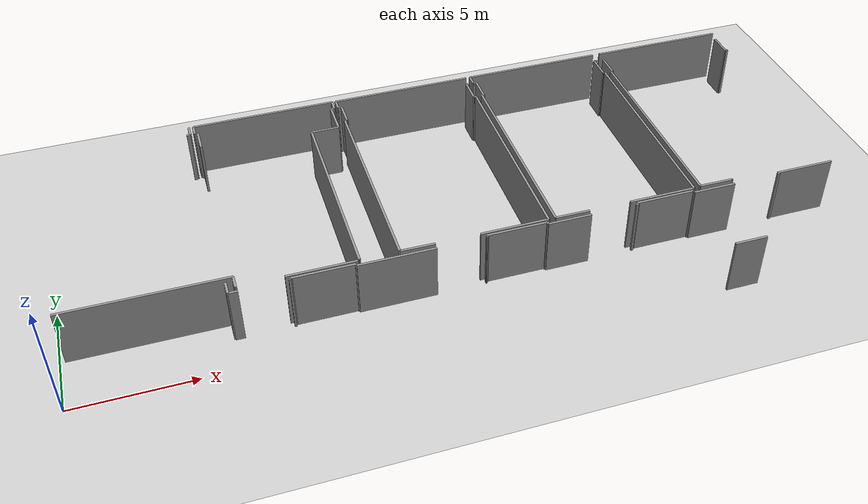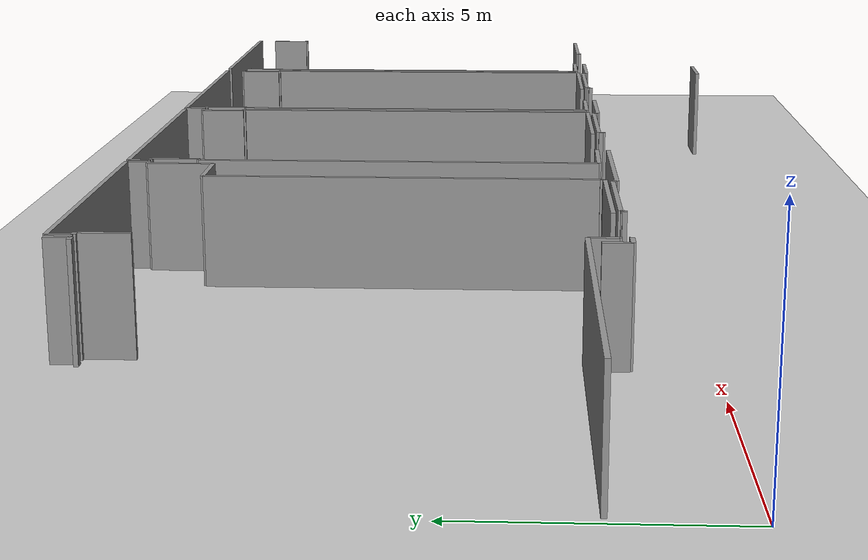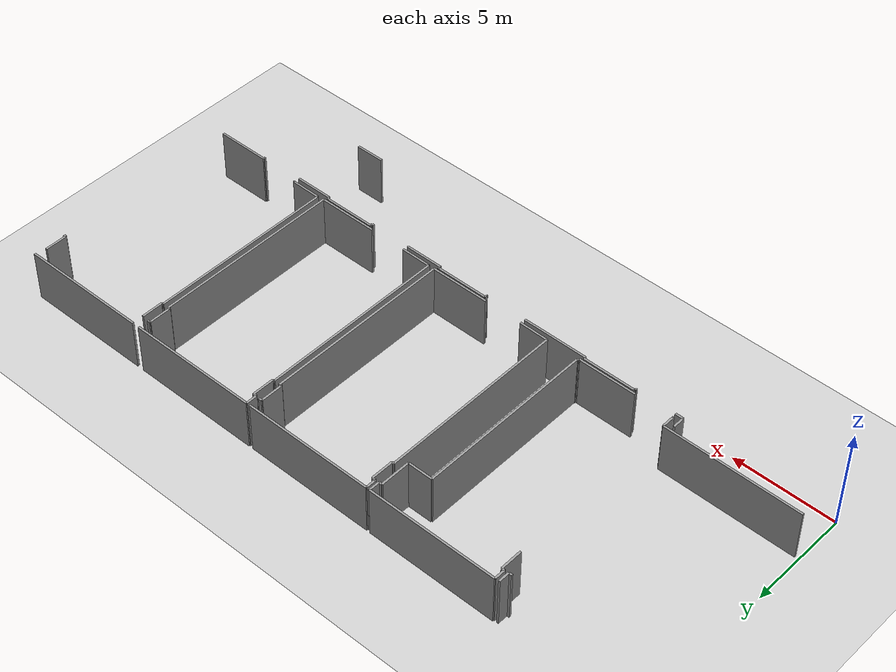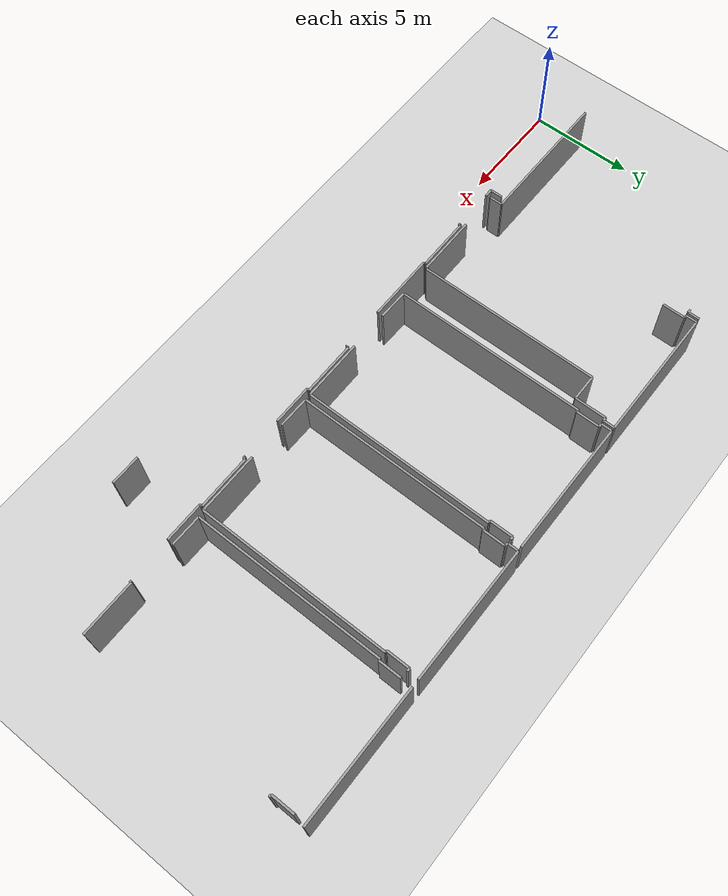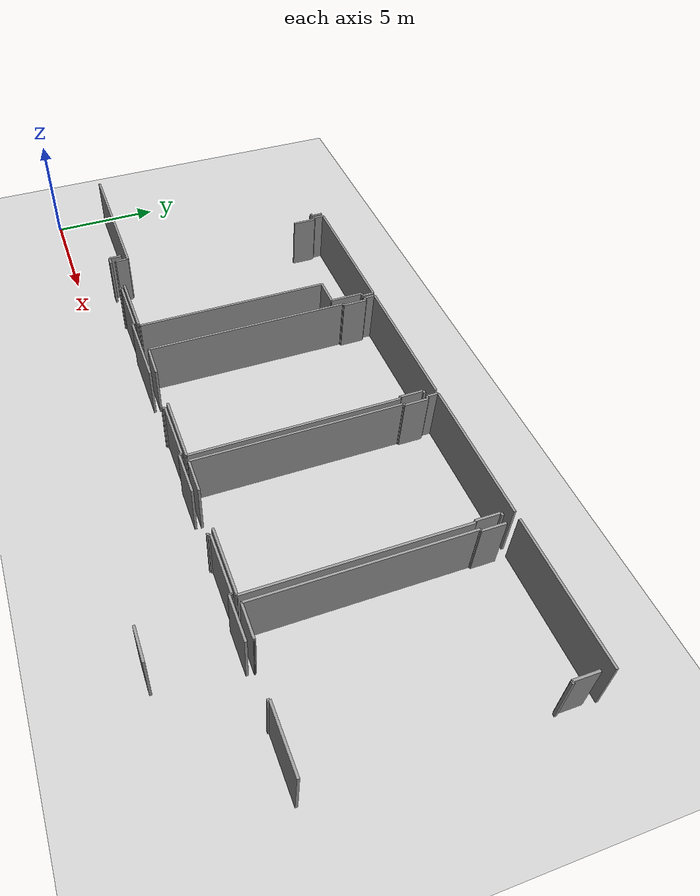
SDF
<sdf version="1.6">
 <world name="default">
  <model name="ground_plane">
   <static>1</static>
   <link name="link">
    <collision name="collision">
     <geometry><plane><normal>0 0 1</normal><size>100 100</size></plane></geometry>
     <surface><friction><ode><mu>100</mu><mu2>50</mu2></ode></friction></surface>
    </collision>
    <visual name="visual">
     <cast_shadows>0</cast_shadows>
     <geometry><plane><normal>0 0 1</normal><size>100 100</size></plane></geometry>
     <material>
      <script><uri>file://media/materials/scripts/gazebo.material</uri><name>Gazebo/Grey</name></script>
     </material>
    </visual>
   </link>
  </model>
  <model name="0510040942_A-40">
   <static>1</static>
   <link name="Wall_359">
    <collision name="Wall_359_Collision">
     <geometry><box><size>9.08649149295 0.1 2.5</size></box></geometry>
     <pose>4.54324574648 0 1.25 0 0 0</pose>
    </collision>
    <visual name="Wall_359_Visual">
     <pose>4.54324574648 0 1.25 0 0 0</pose>
     <geometry><box><size>9.08649149295 0.1 2.5</size></box></geometry>
     <material>
      <script><uri>file://media/materials/scripts/gazebo.material</uri><name>Gazebo/Grey</name></script>
      <ambient>1 1 1 1</ambient>
     </material>
    </visual>
    <pose>84.8795310656 -10.675869419 0 0 0 1.57079632679</pose>
   </link>
   <link name="Wall_360">
    <collision name="Wall_360_Collision">
     <geometry><box><size>0.075491328013 0.1 2.5</size></box></geometry>
     <pose>0.0377456640065 0 1.25 0 0 0</pose>
    </collision>
    <visual name="Wall_360_Visual">
     <pose>0.0377456640065 0 1.25 0 0 0</pose>
     <geometry><box><size>0.075491328013 0.1 2.5</size></box></geometry>
     <material>
      <script><uri>file://media/materials/scripts/gazebo.material</uri><name>Gazebo/Grey</name></script>
      <ambient>1 1 1 1</ambient>
     </material>
    </visual>
    <pose>84.8795310656 -1.58937792608 0 0 0 0.0</pose>
   </link>
   <link name="Wall_361">
    <collision name="Wall_361_Collision">
     <geometry><box><size>1.04545973584 0.1 2.5</size></box></geometry>
     <pose>0.522729867922 0 1.25 0 0 0</pose>
    </collision>
    <visual name="Wall_361_Visual">
     <pose>0.522729867922 0 1.25 0 0 0</pose>
     <geometry><box><size>1.04545973584 0.1 2.5</size></box></geometry>
     <material>
      <script><uri>file://media/materials/scripts/gazebo.material</uri><name>Gazebo/Grey</name></script>
      <ambient>1 1 1 1</ambient>
     </material>
    </visual>
    <pose>84.9550223936 -1.58937792608 0 0 0 1.57079632679</pose>
   </link>
   <link name="Wall_362">
    <collision name="Wall_362_Collision">
     <geometry><box><size>6.1646599084 0.1 2.5</size></box></geometry>
     <pose>3.0823299542 0 1.25 0 0 0</pose>
    </collision>
    <visual name="Wall_362_Visual">
     <pose>3.0823299542 0 1.25 0 0 0</pose>
     <geometry><box><size>6.1646599084 0.1 2.5</size></box></geometry>
     <material>
      <script><uri>file://media/materials/scripts/gazebo.material</uri><name>Gazebo/Grey</name></script>
      <ambient>1 1 1 1</ambient>
     </material>
    </visual>
    <pose>84.9550223936 -0.00634380907672 0 0 0 0.0</pose>
   </link>
   <link name="Wall_365">
    <collision name="Wall_365_Collision">
     <geometry><box><size>1.0835225903 0.1 2.5</size></box></geometry>
     <pose>0.541761295152 0 1.25 0 0 0</pose>
    </collision>
    <visual name="Wall_365_Visual">
     <pose>0.541761295152 0 1.25 0 0 0</pose>
     <geometry><box><size>1.0835225903 0.1 2.5</size></box></geometry>
     <material>
      <script><uri>file://media/materials/scripts/gazebo.material</uri><name>Gazebo/Grey</name></script>
      <ambient>1 1 1 1</ambient>
     </material>
    </visual>
    <pose>90.9813872642 -0.519050458657 0 0 0 -1.57079632679</pose>
   </link>
   <link name="Wall_366">
    <collision name="Wall_366_Collision">
     <geometry><box><size>0.112031668295 0.1 2.5</size></box></geometry>
     <pose>0.0560158341475 0 1.25 0 0 0</pose>
    </collision>
    <visual name="Wall_366_Visual">
     <pose>0.0560158341475 0 1.25 0 0 0</pose>
     <geometry><box><size>0.112031668295 0.1 2.5</size></box></geometry>
     <material>
      <script><uri>file://media/materials/scripts/gazebo.material</uri><name>Gazebo/Grey</name></script>
      <ambient>1 1 1 1</ambient>
     </material>
    </visual>
    <pose>90.9813872642 -1.60257304896 0 0 0 0.0</pose>
   </link>
   <link name="Wall_369">
    <collision name="Wall_369_Collision">
     <geometry><box><size>0.0266439981222 0.1 2.5</size></box></geometry>
     <pose>0.0133219990611 0 1.25 0 0 0</pose>
    </collision>
    <visual name="Wall_369_Visual">
     <pose>0.0133219990611 0 1.25 0 0 0</pose>
     <geometry><box><size>0.0266439981222 0.1 2.5</size></box></geometry>
     <material>
      <script><uri>file://media/materials/scripts/gazebo.material</uri><name>Gazebo/Grey</name></script>
      <ambient>1 1 1 1</ambient>
     </material>
    </visual>
    <pose>86.33771902 -10.7182460637 0 0 0 1.57079632679</pose>
   </link>
   <link name="Wall_370">
    <collision name="Wall_370_Collision">
     <geometry><box><size>1.45827282305 0.1 2.5</size></box></geometry>
     <pose>0.729136411526 0 1.25 0 0 0</pose>
    </collision>
    <visual name="Wall_370_Visual">
     <pose>0.729136411526 0 1.25 0 0 0</pose>
     <geometry><box><size>1.45827282305 0.1 2.5</size></box></geometry>
     <material>
      <script><uri>file://media/materials/scripts/gazebo.material</uri><name>Gazebo/Grey</name></script>
      <ambient>1 1 1 1</ambient>
     </material>
    </visual>
    <pose>86.33771902 -10.6916020655 0 0 0 3.13080389618</pose>
   </link>
   <link name="Wall_371">
    <collision name="Wall_371_Collision">
     <geometry><box><size>9.10767981527 0.1 2.5</size></box></geometry>
     <pose>4.55383990763 0 1.25 0 0 0</pose>
    </collision>
    <visual name="Wall_371_Visual">
     <pose>4.55383990763 0 1.25 0 0 0</pose>
     <geometry><box><size>9.10767981527 0.1 2.5</size></box></geometry>
     <material>
      <script><uri>file://media/materials/scripts/gazebo.material</uri><name>Gazebo/Grey</name></script>
      <ambient>1 1 1 1</ambient>
     </material>
    </visual>
    <pose>78.3886724945 -10.7110141213 0 0 0 1.57079632679</pose>
   </link>
   <link name="Wall_372">
    <collision name="Wall_372_Collision">
     <geometry><box><size>0.0806932514559 0.1 2.5</size></box></geometry>
     <pose>0.0403466257279 0 1.25 0 0 0</pose>
    </collision>
    <visual name="Wall_372_Visual">
     <pose>0.0403466257279 0 1.25 0 0 0</pose>
     <geometry><box><size>0.0806932514559 0.1 2.5</size></box></geometry>
     <material>
      <script><uri>file://media/materials/scripts/gazebo.material</uri><name>Gazebo/Grey</name></script>
      <ambient>1 1 1 1</ambient>
     </material>
    </visual>
    <pose>78.3886724945 -1.60333430605 0 0 0 0.0</pose>
   </link>
   <link name="Wall_373">
    <collision name="Wall_373_Collision">
     <geometry><box><size>1.0712156007 0.1 2.5</size></box></geometry>
     <pose>0.535607800348 0 1.25 0 0 0</pose>
    </collision>
    <visual name="Wall_373_Visual">
     <pose>0.535607800348 0 1.25 0 0 0</pose>
     <geometry><box><size>1.0712156007 0.1 2.5</size></box></geometry>
     <material>
      <script><uri>file://media/materials/scripts/gazebo.material</uri><name>Gazebo/Grey</name></script>
      <ambient>1 1 1 1</ambient>
     </material>
    </visual>
    <pose>78.469365746 -1.60333430605 0 0 0 1.57079632679</pose>
   </link>
   <link name="Wall_374">
    <collision name="Wall_374_Collision">
     <geometry><box><size>0.147937627669 0.1 2.5</size></box></geometry>
     <pose>0.0739688138346 0 1.25 0 0 0</pose>
    </collision>
    <visual name="Wall_374_Visual">
     <pose>0.0739688138346 0 1.25 0 0 0</pose>
     <geometry><box><size>0.147937627669 0.1 2.5</size></box></geometry>
     <material>
      <script><uri>file://media/materials/scripts/gazebo.material</uri><name>Gazebo/Grey</name></script>
      <ambient>1 1 1 1</ambient>
     </material>
    </visual>
    <pose>78.469365746 -0.532118705355 0 0 0 3.14159265359</pose>
   </link>
   <link name="Wall_375">
    <collision name="Wall_375_Collision">
     <geometry><box><size>0.526536153368 0.1 2.5</size></box></geometry>
     <pose>0.263268076684 0 1.25 0 0 0</pose>
    </collision>
    <visual name="Wall_375_Visual">
     <pose>0.263268076684 0 1.25 0 0 0</pose>
     <geometry><box><size>0.526536153368 0.1 2.5</size></box></geometry>
     <material>
      <script><uri>file://media/materials/scripts/gazebo.material</uri><name>Gazebo/Grey</name></script>
      <ambient>1 1 1 1</ambient>
     </material>
    </visual>
    <pose>78.3214281183 -0.532118705355 0 0 0 1.57079632679</pose>
   </link>
   <link name="Wall_376">
    <collision name="Wall_376_Collision">
     <geometry><box><size>6.29851427991 0.1 2.5</size></box></geometry>
     <pose>3.14925713996 0 1.25 0 0 0</pose>
    </collision>
    <visual name="Wall_376_Visual">
     <pose>3.14925713996 0 1.25 0 0 0</pose>
     <geometry><box><size>6.29851427991 0.1 2.5</size></box></geometry>
     <material>
      <script><uri>file://media/materials/scripts/gazebo.material</uri><name>Gazebo/Grey</name></script>
      <ambient>1 1 1 1</ambient>
     </material>
    </visual>
    <pose>78.3214281183 -0.00558255198752 0 0 0 0.0</pose>
   </link>
   <link name="Wall_377">
    <collision name="Wall_377_Collision">
     <geometry><box><size>0.132839362067 0.1 2.5</size></box></geometry>
     <pose>0.0664196810333 0 1.25 0 0 0</pose>
    </collision>
    <visual name="Wall_377_Visual">
     <pose>0.0664196810333 0 1.25 0 0 0</pose>
     <geometry><box><size>0.132839362067 0.1 2.5</size></box></geometry>
     <material>
      <script><uri>file://media/materials/scripts/gazebo.material</uri><name>Gazebo/Grey</name></script>
      <ambient>1 1 1 1</ambient>
     </material>
    </visual>
    <pose>84.6199423982 -0.511311011584 0 0 0 3.14159265359</pose>
   </link>
   <link name="Wall_378">
    <collision name="Wall_378_Collision">
     <geometry><box><size>1.08136569522 0.1 2.5</size></box></geometry>
     <pose>0.540682847609 0 1.25 0 0 0</pose>
    </collision>
    <visual name="Wall_378_Visual">
     <pose>0.540682847609 0 1.25 0 0 0</pose>
     <geometry><box><size>1.08136569522 0.1 2.5</size></box></geometry>
     <material>
      <script><uri>file://media/materials/scripts/gazebo.material</uri><name>Gazebo/Grey</name></script>
      <ambient>1 1 1 1</ambient>
     </material>
    </visual>
    <pose>84.4871030361 -0.511311011584 0 0 0 -1.57079632679</pose>
   </link>
   <link name="Wall_379">
    <collision name="Wall_379_Collision">
     <geometry><box><size>0.0782826040067 0.1 2.5</size></box></geometry>
     <pose>0.0391413020034 0 1.25 0 0 0</pose>
    </collision>
    <visual name="Wall_379_Visual">
     <pose>0.0391413020034 0 1.25 0 0 0</pose>
     <geometry><box><size>0.0782826040067 0.1 2.5</size></box></geometry>
     <material>
      <script><uri>file://media/materials/scripts/gazebo.material</uri><name>Gazebo/Grey</name></script>
      <ambient>1 1 1 1</ambient>
     </material>
    </visual>
    <pose>84.4871030361 -1.5926767068 0 0 0 0.0</pose>
   </link>
   <link name="Wall_380">
    <collision name="Wall_380_Collision">
     <geometry><box><size>9.13394318485 0.1 2.5</size></box></geometry>
     <pose>4.56697159242 0 1.25 0 0 0</pose>
    </collision>
    <visual name="Wall_380_Visual">
     <pose>4.56697159242 0 1.25 0 0 0</pose>
     <geometry><box><size>9.13394318485 0.1 2.5</size></box></geometry>
     <material>
      <script><uri>file://media/materials/scripts/gazebo.material</uri><name>Gazebo/Grey</name></script>
      <ambient>1 1 1 1</ambient>
     </material>
    </visual>
    <pose>84.5653856402 -1.5926767068 0 0 0 -1.57079632679</pose>
   </link>
   <link name="Wall_381">
    <collision name="Wall_381_Collision">
     <geometry><box><size>2.89556821498 0.1 2.5</size></box></geometry>
     <pose>1.44778410749 0 1.25 0 0 0</pose>
    </collision>
    <visual name="Wall_381_Visual">
     <pose>1.44778410749 0 1.25 0 0 0</pose>
     <geometry><box><size>2.89556821498 0.1 2.5</size></box></geometry>
     <material>
      <script><uri>file://media/materials/scripts/gazebo.material</uri><name>Gazebo/Grey</name></script>
      <ambient>1 1 1 1</ambient>
     </material>
    </visual>
    <pose>84.5653856402 -10.7266198916 0 0 0 3.14159265359</pose>
   </link>
   <link name="Wall_382">
    <collision name="Wall_382_Collision">
     <geometry><box><size>1.48212283799 0.1 2.5</size></box></geometry>
     <pose>0.741061418993 0 1.25 0 0 0</pose>
    </collision>
    <visual name="Wall_382_Visual">
     <pose>0.741061418993 0 1.25 0 0 0</pose>
     <geometry><box><size>1.48212283799 0.1 2.5</size></box></geometry>
     <material>
      <script><uri>file://media/materials/scripts/gazebo.material</uri><name>Gazebo/Grey</name></script>
      <ambient>1 1 1 1</ambient>
     </material>
    </visual>
    <pose>79.870713171 -10.7266198916 0 0 0 3.13106312236</pose>
   </link>
   <link name="Wall_383">
    <collision name="Wall_383_Collision">
     <geometry><box><size>9.08471522641 0.1 2.5</size></box></geometry>
     <pose>4.54235761321 0 1.25 0 0 0</pose>
    </collision>
    <visual name="Wall_383_Visual">
     <pose>4.54235761321 0 1.25 0 0 0</pose>
     <geometry><box><size>9.08471522641 0.1 2.5</size></box></geometry>
     <material>
      <script><uri>file://media/materials/scripts/gazebo.material</uri><name>Gazebo/Grey</name></script>
      <ambient>1 1 1 1</ambient>
     </material>
    </visual>
    <pose>71.8882982098 -10.6899526752 0 0 0 1.57079632679</pose>
   </link>
   <link name="Wall_384">
    <collision name="Wall_384_Collision">
     <geometry><box><size>0.100105307231 0.1 2.5</size></box></geometry>
     <pose>0.0500526536153 0 1.25 0 0 0</pose>
    </collision>
    <visual name="Wall_384_Visual">
     <pose>0.0500526536153 0 1.25 0 0 0</pose>
     <geometry><box><size>0.100105307231 0.1 2.5</size></box></geometry>
     <material>
      <script><uri>file://media/materials/scripts/gazebo.material</uri><name>Gazebo/Grey</name></script>
      <ambient>1 1 1 1</ambient>
     </material>
    </visual>
    <pose>71.8882982098 -1.60523744877 0 0 0 0.0</pose>
   </link>
   <link name="Wall_385">
    <collision name="Wall_385_Collision">
     <geometry><box><size>1.09291142774 0.1 2.5</size></box></geometry>
     <pose>0.546455713869 0 1.25 0 0 0</pose>
    </collision>
    <visual name="Wall_385_Visual">
     <pose>0.546455713869 0 1.25 0 0 0</pose>
     <geometry><box><size>1.09291142774 0.1 2.5</size></box></geometry>
     <material>
      <script><uri>file://media/materials/scripts/gazebo.material</uri><name>Gazebo/Grey</name></script>
      <ambient>1 1 1 1</ambient>
     </material>
    </visual>
    <pose>71.988403517 -1.60523744877 0 0 0 1.57079632679</pose>
   </link>
   <link name="Wall_386">
    <collision name="Wall_386_Collision">
     <geometry><box><size>0.158595226918 0.1 2.5</size></box></geometry>
     <pose>0.079297613459 0 1.25 0 0 0</pose>
    </collision>
    <visual name="Wall_386_Visual">
     <pose>0.079297613459 0 1.25 0 0 0</pose>
     <geometry><box><size>0.158595226918 0.1 2.5</size></box></geometry>
     <material>
      <script><uri>file://media/materials/scripts/gazebo.material</uri><name>Gazebo/Grey</name></script>
      <ambient>1 1 1 1</ambient>
     </material>
    </visual>
    <pose>71.988403517 -0.512326021036 0 0 0 3.14159265359</pose>
   </link>
   <link name="Wall_387">
    <collision name="Wall_387_Collision">
     <geometry><box><size>0.500526536153 0.1 2.5</size></box></geometry>
     <pose>0.250263268077 0 1.25 0 0 0</pose>
    </collision>
    <visual name="Wall_387_Visual">
     <pose>0.250263268077 0 1.25 0 0 0</pose>
     <geometry><box><size>0.500526536153 0.1 2.5</size></box></geometry>
     <material>
      <script><uri>file://media/materials/scripts/gazebo.material</uri><name>Gazebo/Grey</name></script>
      <ambient>1 1 1 1</ambient>
     </material>
    </visual>
    <pose>71.8298082901 -0.512326021036 0 0 0 1.57079632679</pose>
   </link>
   <link name="Wall_388">
    <collision name="Wall_388_Collision">
     <geometry><box><size>6.29940241318 0.1 2.5</size></box></geometry>
     <pose>3.14970120659 0 1.25 0 0 0</pose>
    </collision>
    <visual name="Wall_388_Visual">
     <pose>3.14970120659 0 1.25 0 0 0</pose>
     <geometry><box><size>6.29940241318 0.1 2.5</size></box></geometry>
     <material>
      <script><uri>file://media/materials/scripts/gazebo.material</uri><name>Gazebo/Grey</name></script>
      <ambient>1 1 1 1</ambient>
     </material>
    </visual>
    <pose>71.8298082901 -0.0117994848827 0 0 0 0.0</pose>
   </link>
   <link name="Wall_389">
    <collision name="Wall_389_Collision">
     <geometry><box><size>0.138802542599 0.1 2.5</size></box></geometry>
     <pose>0.0694012712993 0 1.25 0 0 0</pose>
    </collision>
    <visual name="Wall_389_Visual">
     <pose>0.0694012712993 0 1.25 0 0 0</pose>
     <geometry><box><size>0.138802542599 0.1 2.5</size></box></geometry>
     <material>
      <script><uri>file://media/materials/scripts/gazebo.material</uri><name>Gazebo/Grey</name></script>
      <ambient>1 1 1 1</ambient>
     </material>
    </visual>
    <pose>78.1292107033 -0.517274192116 0 0 0 3.14159265359</pose>
   </link>
   <link name="Wall_390">
    <collision name="Wall_390_Collision">
     <geometry><box><size>1.08504510448 0.1 2.5</size></box></geometry>
     <pose>0.542522552241 0 1.25 0 0 0</pose>
    </collision>
    <visual name="Wall_390_Visual">
     <pose>0.542522552241 0 1.25 0 0 0</pose>
     <geometry><box><size>1.08504510448 0.1 2.5</size></box></geometry>
     <material>
      <script><uri>file://media/materials/scripts/gazebo.material</uri><name>Gazebo/Grey</name></script>
      <ambient>1 1 1 1</ambient>
     </material>
    </visual>
    <pose>77.9904081607 -0.517274192116 0 0 0 -1.57079632679</pose>
   </link>
   <link name="Wall_391">
    <collision name="Wall_391_Collision">
     <geometry><box><size>0.10086656432 0.1 2.5</size></box></geometry>
     <pose>0.0504332821599 0 1.25 0 0 0</pose>
    </collision>
    <visual name="Wall_391_Visual">
     <pose>0.0504332821599 0 1.25 0 0 0</pose>
     <geometry><box><size>0.10086656432 0.1 2.5</size></box></geometry>
     <material>
      <script><uri>file://media/materials/scripts/gazebo.material</uri><name>Gazebo/Grey</name></script>
      <ambient>1 1 1 1</ambient>
     </material>
    </visual>
    <pose>77.9904081607 -1.6023192966 0 0 0 0.0</pose>
   </link>
   <link name="Wall_392">
    <collision name="Wall_392_Collision">
     <geometry><box><size>9.1150386338 0.1 2.5</size></box></geometry>
     <pose>4.5575193169 0 1.25 0 0 0</pose>
    </collision>
    <visual name="Wall_392_Visual">
     <pose>4.5575193169 0 1.25 0 0 0</pose>
     <geometry><box><size>9.1150386338 0.1 2.5</size></box></geometry>
     <material>
      <script><uri>file://media/materials/scripts/gazebo.material</uri><name>Gazebo/Grey</name></script>
      <ambient>1 1 1 1</ambient>
     </material>
    </visual>
    <pose>78.091274725 -1.6023192966 0 0 0 -1.57079632679</pose>
   </link>
   <link name="Wall_393">
    <collision name="Wall_393_Collision">
     <geometry><box><size>2.88897065354 0.1 2.5</size></box></geometry>
     <pose>1.44448532677 0 1.25 0 0 0</pose>
    </collision>
    <visual name="Wall_393_Visual">
     <pose>1.44448532677 0 1.25 0 0 0</pose>
     <geometry><box><size>2.88897065354 0.1 2.5</size></box></geometry>
     <material>
      <script><uri>file://media/materials/scripts/gazebo.material</uri><name>Gazebo/Grey</name></script>
      <ambient>1 1 1 1</ambient>
     </material>
    </visual>
    <pose>78.091274725 -10.7173579304 0 0 0 3.14159265359</pose>
   </link>
   <link name="Wall_394">
    <collision name="Wall_394_Collision">
     <geometry><box><size>1.43878317103 0.1 2.5</size></box></geometry>
     <pose>0.719391585513 0 1.25 0 0 0</pose>
    </collision>
    <visual name="Wall_394_Visual">
     <pose>0.719391585513 0 1.25 0 0 0</pose>
     <geometry><box><size>1.43878317103 0.1 2.5</size></box></geometry>
     <material>
      <script><uri>file://media/materials/scripts/gazebo.material</uri><name>Gazebo/Grey</name></script>
      <ambient>1 1 1 1</ambient>
     </material>
    </visual>
    <pose>73.326820356 -10.7173579304 0 0 0 3.12254397887</pose>
   </link>
   <link name="Wall_401">
    <collision name="Wall_401_Collision">
     <geometry><box><size>0.534275600442 0.1 2.5</size></box></geometry>
     <pose>0.267137800221 0 1.25 0 0 0</pose>
    </collision>
    <visual name="Wall_401_Visual">
     <pose>0.267137800221 0 1.25 0 0 0</pose>
     <geometry><box><size>0.534275600442 0.1 2.5</size></box></geometry>
     <material>
      <script><uri>file://media/materials/scripts/gazebo.material</uri><name>Gazebo/Grey</name></script>
      <ambient>1 1 1 1</ambient>
     </material>
    </visual>
    <pose>65.1497773323 -0.00634380907672 0 0 0 -1.57079632679</pose>
   </link>
   <link name="Wall_402">
    <collision name="Wall_402_Collision">
     <geometry><box><size>0.159483360189 0.1 2.5</size></box></geometry>
     <pose>0.0797416800944 0 1.25 0 0 0</pose>
    </collision>
    <visual name="Wall_402_Visual">
     <pose>0.0797416800944 0 1.25 0 0 0</pose>
     <geometry><box><size>0.159483360189 0.1 2.5</size></box></geometry>
     <material>
      <script><uri>file://media/materials/scripts/gazebo.material</uri><name>Gazebo/Grey</name></script>
      <ambient>1 1 1 1</ambient>
     </material>
    </visual>
    <pose>65.1497773323 -0.540619409518 0 0 0 3.14159265359</pose>
   </link>
   <link name="Wall_405">
    <collision name="Wall_405_Collision">
     <geometry><box><size>1.07362624814 0.1 2.5</size></box></geometry>
     <pose>0.536813124072 0 1.25 0 0 0</pose>
    </collision>
    <visual name="Wall_405_Visual">
     <pose>0.536813124072 0 1.25 0 0 0</pose>
     <geometry><box><size>1.07362624814 0.1 2.5</size></box></geometry>
     <material>
      <script><uri>file://media/materials/scripts/gazebo.material</uri><name>Gazebo/Grey</name></script>
      <ambient>1 1 1 1</ambient>
     </material>
    </visual>
    <pose>65.4762297474 -1.59978177297 0 0 0 1.57079632679</pose>
   </link>
   <link name="Wall_406">
    <collision name="Wall_406_Collision">
     <geometry><box><size>0.130555590799 0.1 2.5</size></box></geometry>
     <pose>0.0652777953995 0 1.25 0 0 0</pose>
    </collision>
    <visual name="Wall_406_Visual">
     <pose>0.0652777953995 0 1.25 0 0 0</pose>
     <geometry><box><size>0.130555590799 0.1 2.5</size></box></geometry>
     <material>
      <script><uri>file://media/materials/scripts/gazebo.material</uri><name>Gazebo/Grey</name></script>
      <ambient>1 1 1 1</ambient>
     </material>
    </visual>
    <pose>65.4762297474 -0.526155524823 0 0 0 3.14159265359</pose>
   </link>
   <link name="Wall_407">
    <collision name="Wall_407_Collision">
     <geometry><box><size>0.522349239377 0.1 2.5</size></box></geometry>
     <pose>0.261174619689 0 1.25 0 0 0</pose>
    </collision>
    <visual name="Wall_407_Visual">
     <pose>0.261174619689 0 1.25 0 0 0</pose>
     <geometry><box><size>0.522349239377 0.1 2.5</size></box></geometry>
     <material>
      <script><uri>file://media/materials/scripts/gazebo.material</uri><name>Gazebo/Grey</name></script>
      <ambient>1 1 1 1</ambient>
     </material>
    </visual>
    <pose>65.3456741566 -0.526155524823 0 0 0 1.57079632679</pose>
   </link>
   <link name="Wall_408">
    <collision name="Wall_408_Collision">
     <geometry><box><size>6.30815686971 0.1 2.5</size></box></geometry>
     <pose>3.15407843486 0 1.25 0 0 0</pose>
    </collision>
    <visual name="Wall_408_Visual">
     <pose>3.15407843486 0 1.25 0 0 0</pose>
     <geometry><box><size>6.30815686971 0.1 2.5</size></box></geometry>
     <material>
      <script><uri>file://media/materials/scripts/gazebo.material</uri><name>Gazebo/Grey</name></script>
      <ambient>1 1 1 1</ambient>
     </material>
    </visual>
    <pose>65.3456741566 -0.00380628544603 0 0 0 0.0</pose>
   </link>
   <link name="Wall_409">
    <collision name="Wall_409_Collision">
     <geometry><box><size>0.523618001193 0.1 2.5</size></box></geometry>
     <pose>0.261809000596 0 1.25 0 0 0</pose>
    </collision>
    <visual name="Wall_409_Visual">
     <pose>0.261809000596 0 1.25 0 0 0</pose>
     <geometry><box><size>0.523618001193 0.1 2.5</size></box></geometry>
     <material>
      <script><uri>file://media/materials/scripts/gazebo.material</uri><name>Gazebo/Grey</name></script>
      <ambient>1 1 1 1</ambient>
     </material>
    </visual>
    <pose>71.6538310263 -0.00380628544603 0 0 0 -1.57079632679</pose>
   </link>
   <link name="Wall_410">
    <collision name="Wall_410_Collision">
     <geometry><box><size>0.153520179657 0.1 2.5</size></box></geometry>
     <pose>0.0767600898283 0 1.25 0 0 0</pose>
    </collision>
    <visual name="Wall_410_Visual">
     <pose>0.0767600898283 0 1.25 0 0 0</pose>
     <geometry><box><size>0.153520179657 0.1 2.5</size></box></geometry>
     <material>
      <script><uri>file://media/materials/scripts/gazebo.material</uri><name>Gazebo/Grey</name></script>
      <ambient>1 1 1 1</ambient>
     </material>
    </visual>
    <pose>71.6538310263 -0.527424286639 0 0 0 3.14159265359</pose>
   </link>
   <link name="Wall_411">
    <collision name="Wall_411_Collision">
     <geometry><box><size>1.48102566705 0.1 2.5</size></box></geometry>
     <pose>0.740512833526 0 1.25 0 0 0</pose>
    </collision>
    <visual name="Wall_411_Visual">
     <pose>0.740512833526 0 1.25 0 0 0</pose>
     <geometry><box><size>1.48102566705 0.1 2.5</size></box></geometry>
     <material>
      <script><uri>file://media/materials/scripts/gazebo.material</uri><name>Gazebo/Grey</name></script>
      <ambient>1 1 1 1</ambient>
     </material>
    </visual>
    <pose>71.5003108466 -0.527424286639 0 0 0 -1.57079632679</pose>
   </link>
   <link name="Wall_412">
    <collision name="Wall_412_Collision">
     <geometry><box><size>1.21775759037 0.1 2.5</size></box></geometry>
     <pose>0.608878795184 0 1.25 0 0 0</pose>
    </collision>
    <visual name="Wall_412_Visual">
     <pose>0.608878795184 0 1.25 0 0 0</pose>
     <geometry><box><size>1.21775759037 0.1 2.5</size></box></geometry>
     <material>
      <script><uri>file://media/materials/scripts/gazebo.material</uri><name>Gazebo/Grey</name></script>
      <ambient>1 1 1 1</ambient>
     </material>
    </visual>
    <pose>71.5003108466 -2.00844995369 0 0 0 3.14159265359</pose>
   </link>
   <link name="Wall_413">
    <collision name="Wall_413_Collision">
     <geometry><box><size>8.66538944644 0.1 2.5</size></box></geometry>
     <pose>4.33269472322 0 1.25 0 0 0</pose>
    </collision>
    <visual name="Wall_413_Visual">
     <pose>4.33269472322 0 1.25 0 0 0</pose>
     <geometry><box><size>8.66538944644 0.1 2.5</size></box></geometry>
     <material>
      <script><uri>file://media/materials/scripts/gazebo.material</uri><name>Gazebo/Grey</name></script>
      <ambient>1 1 1 1</ambient>
     </material>
    </visual>
    <pose>70.2825532563 -2.00844995369 0 0 0 -1.57079632679</pose>
   </link>
   <link name="Wall_414">
    <collision name="Wall_414_Collision">
     <geometry><box><size>0.0686400142101 0.1 2.5</size></box></geometry>
     <pose>0.0343200071051 0 1.25 0 0 0</pose>
    </collision>
    <visual name="Wall_414_Visual">
     <pose>0.0343200071051 0 1.25 0 0 0</pose>
     <geometry><box><size>0.0686400142101 0.1 2.5</size></box></geometry>
     <material>
      <script><uri>file://media/materials/scripts/gazebo.material</uri><name>Gazebo/Grey</name></script>
      <ambient>1 1 1 1</ambient>
     </material>
    </visual>
    <pose>70.2825532563 -10.6738394001 0 0 0 3.14159265359</pose>
   </link>
   <link name="Wall_415">
    <collision name="Wall_415_Collision">
     <geometry><box><size>0.0573480340536 0.1 2.5</size></box></geometry>
     <pose>0.0286740170268 0 1.25 0 0 0</pose>
    </collision>
    <visual name="Wall_415_Visual">
     <pose>0.0286740170268 0 1.25 0 0 0</pose>
     <geometry><box><size>0.0573480340536 0.1 2.5</size></box></geometry>
     <material>
      <script><uri>file://media/materials/scripts/gazebo.material</uri><name>Gazebo/Grey</name></script>
      <ambient>1 1 1 1</ambient>
     </material>
    </visual>
    <pose>70.2139132421 -10.6738394001 0 0 0 -1.57079632679</pose>
   </link>
   <link name="Wall_416">
    <collision name="Wall_416_Collision">
     <geometry><box><size>2.85433345598 0.1 2.5</size></box></geometry>
     <pose>1.42716672799 0 1.25 0 0 0</pose>
    </collision>
    <visual name="Wall_416_Visual">
     <pose>1.42716672799 0 1.25 0 0 0</pose>
     <geometry><box><size>2.85433345598 0.1 2.5</size></box></geometry>
     <material>
      <script><uri>file://media/materials/scripts/gazebo.material</uri><name>Gazebo/Grey</name></script>
      <ambient>1 1 1 1</ambient>
     </material>
    </visual>
    <pose>70.2139132421 -10.7311874342 0 0 0 3.14159265359</pose>
   </link>
   <link name="Wall_417">
    <collision name="Wall_417_Collision">
     <geometry><box><size>0.0493548346169 0.1 2.5</size></box></geometry>
     <pose>0.0246774173084 0 1.25 0 0 0</pose>
    </collision>
    <visual name="Wall_417_Visual">
     <pose>0.0246774173084 0 1.25 0 0 0</pose>
     <geometry><box><size>0.0493548346169 0.1 2.5</size></box></geometry>
     <material>
      <script><uri>file://media/materials/scripts/gazebo.material</uri><name>Gazebo/Grey</name></script>
      <ambient>1 1 1 1</ambient>
     </material>
    </visual>
    <pose>65.5433472474 -10.7311874342 0 0 0 3.14159265359</pose>
   </link>
   <link name="Wall_418">
    <collision name="Wall_418_Collision">
     <geometry><box><size>0.5936536534 0.1 2.5</size></box></geometry>
     <pose>0.2968268267 0 1.25 0 0 0</pose>
    </collision>
    <visual name="Wall_418_Visual">
     <pose>0.2968268267 0 1.25 0 0 0</pose>
     <geometry><box><size>0.5936536534 0.1 2.5</size></box></geometry>
     <material>
      <script><uri>file://media/materials/scripts/gazebo.material</uri><name>Gazebo/Grey</name></script>
      <ambient>1 1 1 1</ambient>
     </material>
    </visual>
    <pose>65.4939924128 -10.7311874342 0 0 0 1.57079632679</pose>
   </link>
   <link name="Wall_419">
    <collision name="Wall_419_Collision">
     <geometry><box><size>6.65353125556 0.1 2.5</size></box></geometry>
     <pose>3.32676562778 0 1.25 0 0 0</pose>
    </collision>
    <visual name="Wall_419_Visual">
     <pose>3.32676562778 0 1.25 0 0 0</pose>
     <geometry><box><size>6.65353125556 0.1 2.5</size></box></geometry>
     <material>
      <script><uri>file://media/materials/scripts/gazebo.material</uri><name>Gazebo/Grey</name></script>
      <ambient>1 1 1 1</ambient>
     </material>
    </visual>
    <pose>65.4939924128 -10.1375337808 0 0 0 3.1393043717</pose>
   </link>
   <link name="Wall_421">
    <collision name="Wall_421_Collision">
     <geometry><box><size>0.584899196874 0.1 2.5</size></box></geometry>
     <pose>0.292449598437 0 1.25 0 0 0</pose>
    </collision>
    <visual name="Wall_421_Visual">
     <pose>0.292449598437 0 1.25 0 0 0</pose>
     <geometry><box><size>0.584899196874 0.1 2.5</size></box></geometry>
     <material>
      <script><uri>file://media/materials/scripts/gazebo.material</uri><name>Gazebo/Grey</name></script>
      <ambient>1 1 1 1</ambient>
     </material>
    </visual>
    <pose>65.1627187028 -10.382277935 0 0 0 -1.57079632679</pose>
   </link>
   <link name="Wall_422">
    <collision name="Wall_422_Collision">
     <geometry><box><size>0.381516677874 0.1 2.5</size></box></geometry>
     <pose>0.190758338937 0 1.25 0 0 0</pose>
    </collision>
    <visual name="Wall_422_Visual">
     <pose>0.190758338937 0 1.25 0 0 0</pose>
     <geometry><box><size>0.381516677874 0.1 2.5</size></box></geometry>
     <material>
      <script><uri>file://media/materials/scripts/gazebo.material</uri><name>Gazebo/Grey</name></script>
      <ambient>1 1 1 1</ambient>
     </material>
    </visual>
    <pose>65.1627187028 -10.9671771318 0 0 0 0.0</pose>
   </link>
   <link name="Wall_423">
    <collision name="Wall_423_Collision">
     <geometry><box><size>0.0796782420036 0.1 2.5</size></box></geometry>
     <pose>0.0398391210018 0 1.25 0 0 0</pose>
    </collision>
    <visual name="Wall_423_Visual">
     <pose>0.0398391210018 0 1.25 0 0 0</pose>
     <geometry><box><size>0.0796782420036 0.1 2.5</size></box></geometry>
     <material>
      <script><uri>file://media/materials/scripts/gazebo.material</uri><name>Gazebo/Grey</name></script>
      <ambient>1 1 1 1</ambient>
     </material>
    </visual>
    <pose>67.4712308258 -10.9671771318 0 0 0 0.0</pose>
   </link>
   <link name="Wall_424">
    <collision name="Wall_424_Collision">
     <geometry><box><size>0.0787901087329 0.1 2.5</size></box></geometry>
     <pose>0.0393950543664 0 1.25 0 0 0</pose>
    </collision>
    <visual name="Wall_424_Visual">
     <pose>0.0393950543664 0 1.25 0 0 0</pose>
     <geometry><box><size>0.0787901087329 0.1 2.5</size></box></geometry>
     <material>
      <script><uri>file://media/materials/scripts/gazebo.material</uri><name>Gazebo/Grey</name></script>
      <ambient>1 1 1 1</ambient>
     </material>
    </visual>
    <pose>67.5509090678 -10.9671771318 0 0 0 1.57079632679</pose>
   </link>
   <link name="Wall_425">
    <collision name="Wall_425_Collision">
     <geometry><box><size>2.55033812502 0.1 2.5</size></box></geometry>
     <pose>1.27516906251 0 1.25 0 0 0</pose>
    </collision>
    <visual name="Wall_425_Visual">
     <pose>1.27516906251 0 1.25 0 0 0</pose>
     <geometry><box><size>2.55033812502 0.1 2.5</size></box></geometry>
     <material>
      <script><uri>file://media/materials/scripts/gazebo.material</uri><name>Gazebo/Grey</name></script>
      <ambient>1 1 1 1</ambient>
     </material>
    </visual>
    <pose>67.5509090678 -10.8883870231 0 0 0 0.0</pose>
   </link>
   <link name="Wall_426">
    <collision name="Wall_426_Collision">
     <geometry><box><size>0.090208965071 0.1 2.5</size></box></geometry>
     <pose>0.0451044825355 0 1.25 0 0 0</pose>
    </collision>
    <visual name="Wall_426_Visual">
     <pose>0.0451044825355 0 1.25 0 0 0</pose>
     <geometry><box><size>0.090208965071 0.1 2.5</size></box></geometry>
     <material>
      <script><uri>file://media/materials/scripts/gazebo.material</uri><name>Gazebo/Grey</name></script>
      <ambient>1 1 1 1</ambient>
     </material>
    </visual>
    <pose>70.1012471929 -10.8883870231 0 0 0 -1.57079632679</pose>
   </link>
   <link name="Wall_427">
    <collision name="Wall_427_Collision">
     <geometry><box><size>3.20984051664 0.1 2.5</size></box></geometry>
     <pose>1.60492025832 0 1.25 0 0 0</pose>
    </collision>
    <visual name="Wall_427_Visual">
     <pose>1.60492025832 0 1.25 0 0 0</pose>
     <geometry><box><size>3.20984051664 0.1 2.5</size></box></geometry>
     <material>
      <script><uri>file://media/materials/scripts/gazebo.material</uri><name>Gazebo/Grey</name></script>
      <ambient>1 1 1 1</ambient>
     </material>
    </visual>
    <pose>70.1012471929 -10.9785959882 0 0 0 0.0</pose>
   </link>
   <link name="Wall_428">
    <collision name="Wall_428_Collision">
     <geometry><box><size>0.0381897306419 0.1 2.5</size></box></geometry>
     <pose>0.0190948653209 0 1.25 0 0 0</pose>
    </collision>
    <visual name="Wall_428_Visual">
     <pose>0.0190948653209 0 1.25 0 0 0</pose>
     <geometry><box><size>0.0381897306419 0.1 2.5</size></box></geometry>
     <material>
      <script><uri>file://media/materials/scripts/gazebo.material</uri><name>Gazebo/Grey</name></script>
      <ambient>1 1 1 1</ambient>
     </material>
    </visual>
    <pose>75.3747288022 -10.9785959882 0 0 0 0.0</pose>
   </link>
   <link name="Wall_429">
    <collision name="Wall_429_Collision">
     <geometry><box><size>0.104419097403 0.1 2.5</size></box></geometry>
     <pose>0.0522095487014 0 1.25 0 0 0</pose>
    </collision>
    <visual name="Wall_429_Visual">
     <pose>0.0522095487014 0 1.25 0 0 0</pose>
     <geometry><box><size>0.104419097403 0.1 2.5</size></box></geometry>
     <material>
      <script><uri>file://media/materials/scripts/gazebo.material</uri><name>Gazebo/Grey</name></script>
      <ambient>1 1 1 1</ambient>
     </material>
    </visual>
    <pose>75.4129185328 -10.9785959882 0 0 0 1.57079632679</pose>
   </link>
   <link name="Wall_430">
    <collision name="Wall_430_Collision">
     <geometry><box><size>2.55871195301 0.1 2.5</size></box></geometry>
     <pose>1.2793559765 0 1.25 0 0 0</pose>
    </collision>
    <visual name="Wall_430_Visual">
     <pose>1.2793559765 0 1.25 0 0 0</pose>
     <geometry><box><size>2.55871195301 0.1 2.5</size></box></geometry>
     <material>
      <script><uri>file://media/materials/scripts/gazebo.material</uri><name>Gazebo/Grey</name></script>
      <ambient>1 1 1 1</ambient>
     </material>
    </visual>
    <pose>75.4129185328 -10.8741768908 0 0 0 0.0</pose>
   </link>
   <link name="Wall_431">
    <collision name="Wall_431_Collision">
     <geometry><box><size>0.106322240126 0.1 2.5</size></box></geometry>
     <pose>0.0531611200629 0 1.25 0 0 0</pose>
    </collision>
    <visual name="Wall_431_Visual">
     <pose>0.0531611200629 0 1.25 0 0 0</pose>
     <geometry><box><size>0.106322240126 0.1 2.5</size></box></geometry>
     <material>
      <script><uri>file://media/materials/scripts/gazebo.material</uri><name>Gazebo/Grey</name></script>
      <ambient>1 1 1 1</ambient>
     </material>
    </visual>
    <pose>77.9716304858 -10.8741768908 0 0 0 -1.57079632679</pose>
   </link>
   <link name="Wall_432">
    <collision name="Wall_432_Collision">
     <geometry><box><size>1.87472245835 0.1 2.5</size></box></geometry>
     <pose>0.937361229176 0 1.25 0 0 0</pose>
    </collision>
    <visual name="Wall_432_Visual">
     <pose>0.937361229176 0 1.25 0 0 0</pose>
     <geometry><box><size>1.87472245835 0.1 2.5</size></box></geometry>
     <material>
      <script><uri>file://media/materials/scripts/gazebo.material</uri><name>Gazebo/Grey</name></script>
      <ambient>1 1 1 1</ambient>
     </material>
    </visual>
    <pose>77.9716304858 -10.9804991309 0 0 0 0.0</pose>
   </link>
   <link name="Wall_433">
    <collision name="Wall_433_Collision">
     <geometry><box><size>0.0912239745233 0.1 2.5</size></box></geometry>
     <pose>0.0456119872616 0 1.25 0 0 0</pose>
    </collision>
    <visual name="Wall_433_Visual">
     <pose>0.0456119872616 0 1.25 0 0 0</pose>
     <geometry><box><size>0.0912239745233 0.1 2.5</size></box></geometry>
     <material>
      <script><uri>file://media/materials/scripts/gazebo.material</uri><name>Gazebo/Grey</name></script>
      <ambient>1 1 1 1</ambient>
     </material>
    </visual>
    <pose>81.8195313194 -10.9804991309 0 0 0 0.0</pose>
   </link>
   <link name="Wall_434">
    <collision name="Wall_434_Collision">
     <geometry><box><size>0.104672849766 0.1 2.5</size></box></geometry>
     <pose>0.052336424883 0 1.25 0 0 0</pose>
    </collision>
    <visual name="Wall_434_Visual">
     <pose>0.052336424883 0 1.25 0 0 0</pose>
     <geometry><box><size>0.104672849766 0.1 2.5</size></box></geometry>
     <material>
      <script><uri>file://media/materials/scripts/gazebo.material</uri><name>Gazebo/Grey</name></script>
      <ambient>1 1 1 1</ambient>
     </material>
    </visual>
    <pose>81.9107552939 -10.9804991309 0 0 0 1.57079632679</pose>
   </link>
   <link name="Wall_435">
    <collision name="Wall_435_Collision">
     <geometry><box><size>2.55744319119 0.1 2.5</size></box></geometry>
     <pose>1.27872159559 0 1.25 0 0 0</pose>
    </collision>
    <visual name="Wall_435_Visual">
     <pose>1.27872159559 0 1.25 0 0 0</pose>
     <geometry><box><size>2.55744319119 0.1 2.5</size></box></geometry>
     <material>
      <script><uri>file://media/materials/scripts/gazebo.material</uri><name>Gazebo/Grey</name></script>
      <ambient>1 1 1 1</ambient>
     </material>
    </visual>
    <pose>81.9107552939 -10.8758262811 0 0 0 0.0</pose>
   </link>
   <link name="Wall_436">
    <collision name="Wall_436_Collision">
     <geometry><box><size>0.107591001941 0.1 2.5</size></box></geometry>
     <pose>0.0537955009706 0 1.25 0 0 0</pose>
    </collision>
    <visual name="Wall_436_Visual">
     <pose>0.0537955009706 0 1.25 0 0 0</pose>
     <geometry><box><size>0.107591001941 0.1 2.5</size></box></geometry>
     <material>
      <script><uri>file://media/materials/scripts/gazebo.material</uri><name>Gazebo/Grey</name></script>
      <ambient>1 1 1 1</ambient>
     </material>
    </visual>
    <pose>84.4681984851 -10.8758262811 0 0 0 -1.57079632679</pose>
   </link>
   <link name="Wall_437">
    <collision name="Wall_437_Collision">
     <geometry><box><size>1.84528718424 0.1 2.5</size></box></geometry>
     <pose>0.922643592118 0 1.25 0 0 0</pose>
    </collision>
    <visual name="Wall_437_Visual">
     <pose>0.922643592118 0 1.25 0 0 0</pose>
     <geometry><box><size>1.84528718424 0.1 2.5</size></box></geometry>
     <material>
      <script><uri>file://media/materials/scripts/gazebo.material</uri><name>Gazebo/Grey</name></script>
      <ambient>1 1 1 1</ambient>
     </material>
    </visual>
    <pose>84.4681984851 -10.9834172831 0 0 0 0.0</pose>
   </link>
   <link name="Wall_438">
    <collision name="Wall_438_Collision">
     <geometry><box><size>0.100359059594 0.1 2.5</size></box></geometry>
     <pose>0.0501795297969 0 1.25 0 0 0</pose>
    </collision>
    <visual name="Wall_438_Visual">
     <pose>0.0501795297969 0 1.25 0 0 0</pose>
     <geometry><box><size>0.100359059594 0.1 2.5</size></box></geometry>
     <material>
      <script><uri>file://media/materials/scripts/gazebo.material</uri><name>Gazebo/Grey</name></script>
      <ambient>1 1 1 1</ambient>
     </material>
    </visual>
    <pose>88.4200109114 -10.9834172831 0 0 0 1.57079632679</pose>
   </link>
   <link name="Wall_439">
    <collision name="Wall_439_Collision">
     <geometry><box><size>2.56480200972 0.1 2.5</size></box></geometry>
     <pose>1.28240100486 0 1.25 0 0 0</pose>
    </collision>
    <visual name="Wall_439_Visual">
     <pose>1.28240100486 0 1.25 0 0 0</pose>
     <geometry><box><size>2.56480200972 0.1 2.5</size></box></geometry>
     <material>
      <script><uri>file://media/materials/scripts/gazebo.material</uri><name>Gazebo/Grey</name></script>
      <ambient>1 1 1 1</ambient>
     </material>
    </visual>
    <pose>88.4200109114 -10.8830582235 0 0 0 0.0</pose>
   </link>
   <link name="Wall_464">
    <collision name="Wall_464_Collision">
     <geometry><box><size>1.39310047325 0.1 2.5</size></box></geometry>
     <pose>0.696550236624 0 1.25 0 0 0</pose>
    </collision>
    <visual name="Wall_464_Visual">
     <pose>0.696550236624 0 1.25 0 0 0</pose>
     <geometry><box><size>1.39310047325 0.1 2.5</size></box></geometry>
     <material>
      <script><uri>file://media/materials/scripts/gazebo.material</uri><name>Gazebo/Grey</name></script>
      <ambient>1 1 1 1</ambient>
     </material>
    </visual>
    <pose>85.9116688024 -14.3309184567 0 0 0 3.14159265359</pose>
   </link>
   <pose>-58.65 12.576975145 0 0 0 0</pose>
  </model>
 </world>
</sdf>
